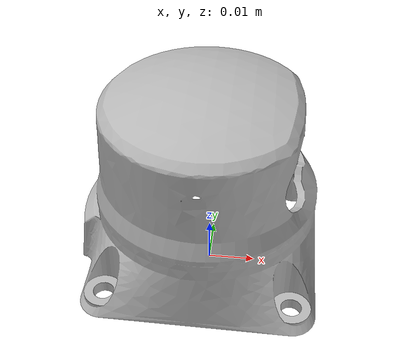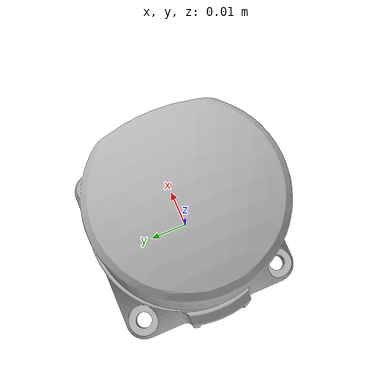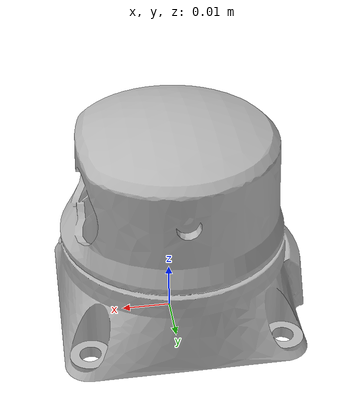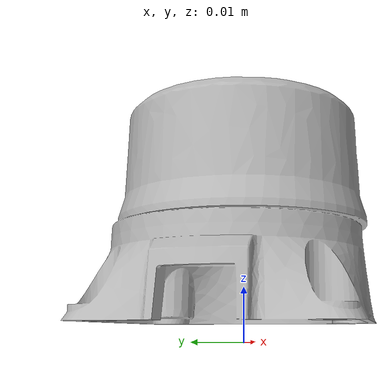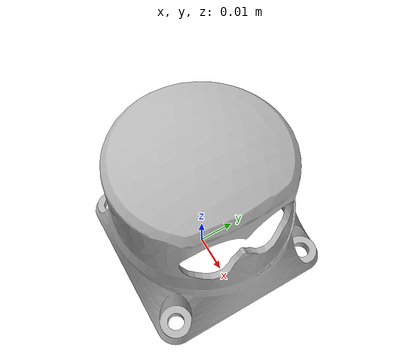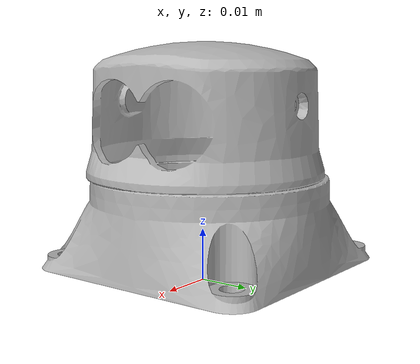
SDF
<?xml version="1.0"?>
<sdf version="1.5">
  <model name="SF45B">
    <!-- Base Link-->
    <link name="ray_link">
      <!-- Offset by 1 cm-->
      <pose> 0 0 0.01 0 0 0 </pose>
      <!-- Give collision cylinder-->
      <collision name="ray_collision">
        <geometry>
          <cylinder>
            <radius>.04267</radius>
            <length>.05867</length>
          </cylinder>
        </geometry>
      </collision>
      <!-- Make visual model-->
      <visual name="ray_visual">
        <geometry>
          <mesh>
            <uri>meshes/sf45body.dae</uri>
          </mesh>
        </geometry>
      </visual>
      <!-- ray sensor-->
      <sensor name="sensor_ray" type="ray">
        <visualize>true</visualize>
        <ray>
          <pose> 0 0 0.001 0 0 0 </pose>
          <scan>
            <horizontal>
              <!-- take 500 samples across radius -->
              <samples>500</samples>
              <!-- don't know what this means-->
              <resolution>0.5</resolution>
              <!-- Scan across 320 degrees, in radians-->
              <min_angle>-2.79253</min_angle>
              <max_angle>2.79253</max_angle>
            </horizontal>
          </scan>
          <range>
            <min>0.5</min>
            <max>50</max>
          </range>
        </ray>
        <always_on>true</always_on>
        <update_rate>30</update_rate>
        <plugin name="pc2" filename="libgazebo_ros_ray_sensor.so">
          <ros>
            <namespace>/ray</namespace>
            <remapping>~/out:=pointcloud2</remapping>
          </ros>.5236
          <output_type>sensor_msgs/PointCloud2</output_type>
        </plugin>
      </sensor>

    </link>
  </model>
</sdf>
